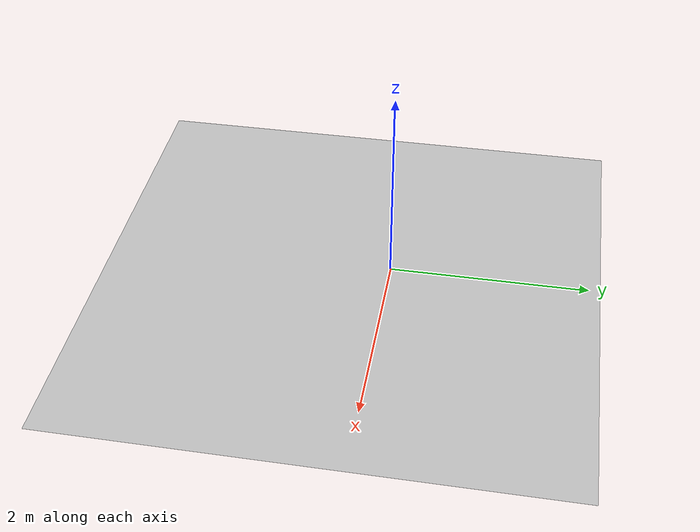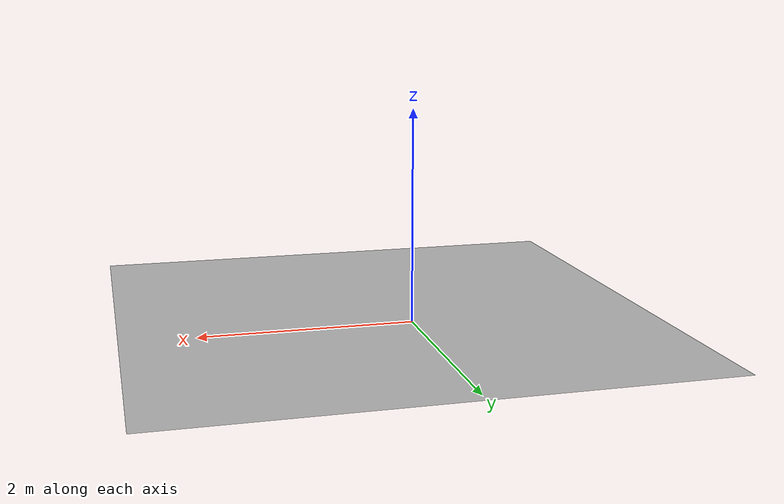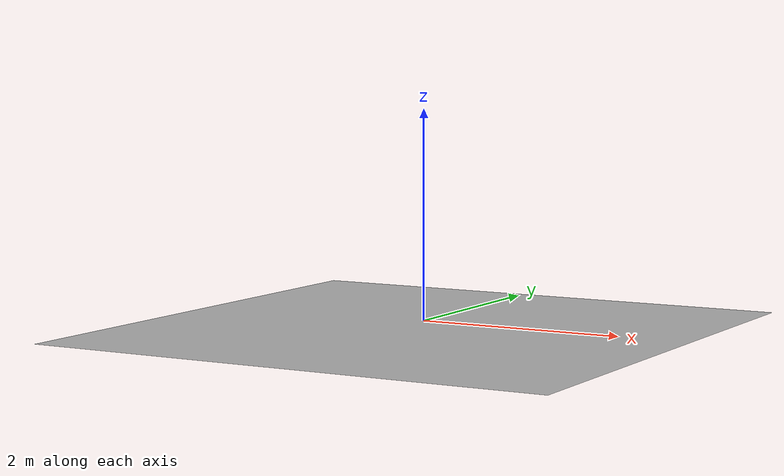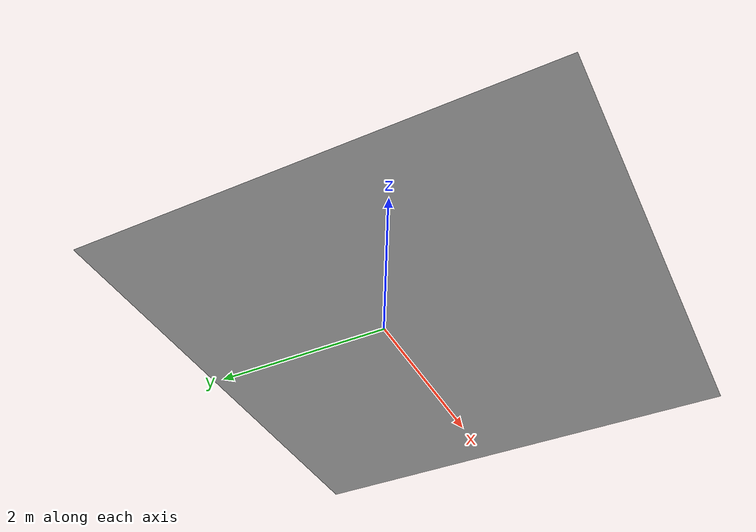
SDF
<?xml version='1.0'?>
<sdf version="1.6">
<model name="map2">
  <static>true</static>
    <link name="link">
      <visual name="visual">
        <geometry>
          <mesh>
            <uri>model://map2gz/meshes/map1.dae</uri>
          </mesh>
        </geometry>
      </visual>
    </link>
  </model>
</sdf>
